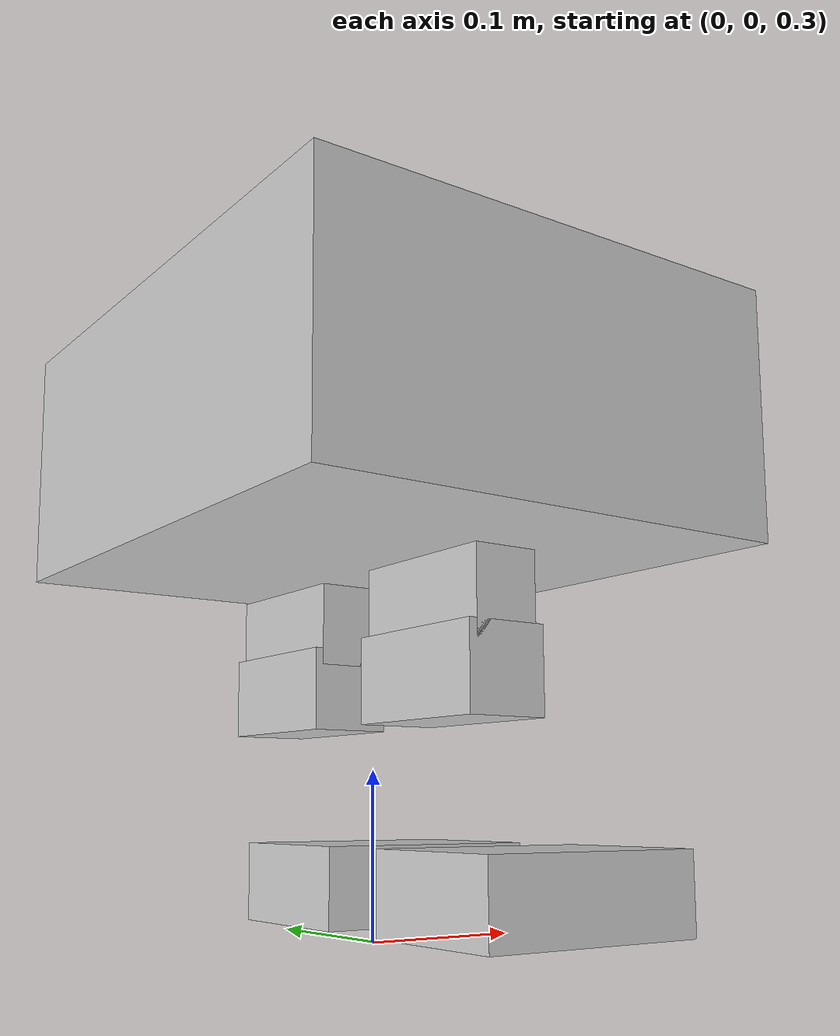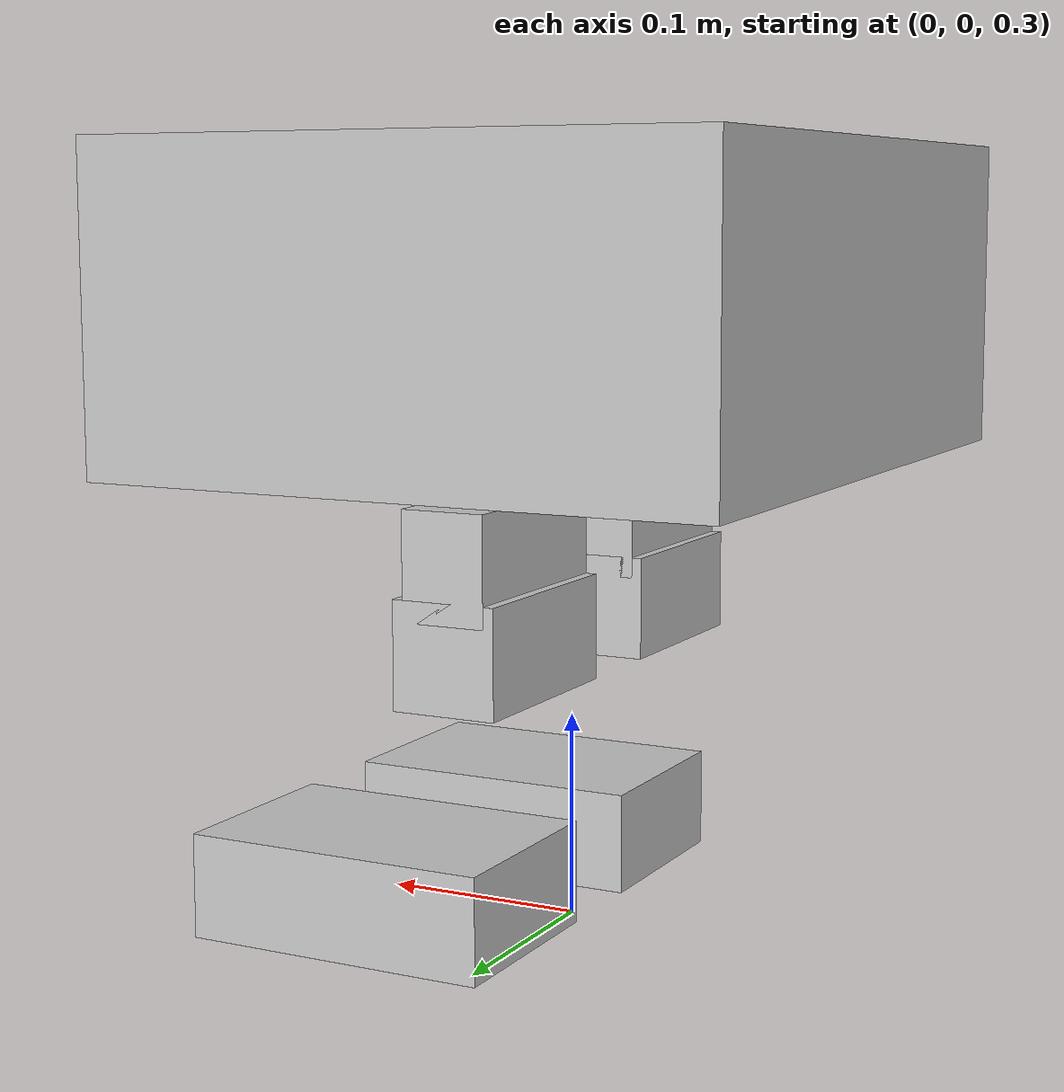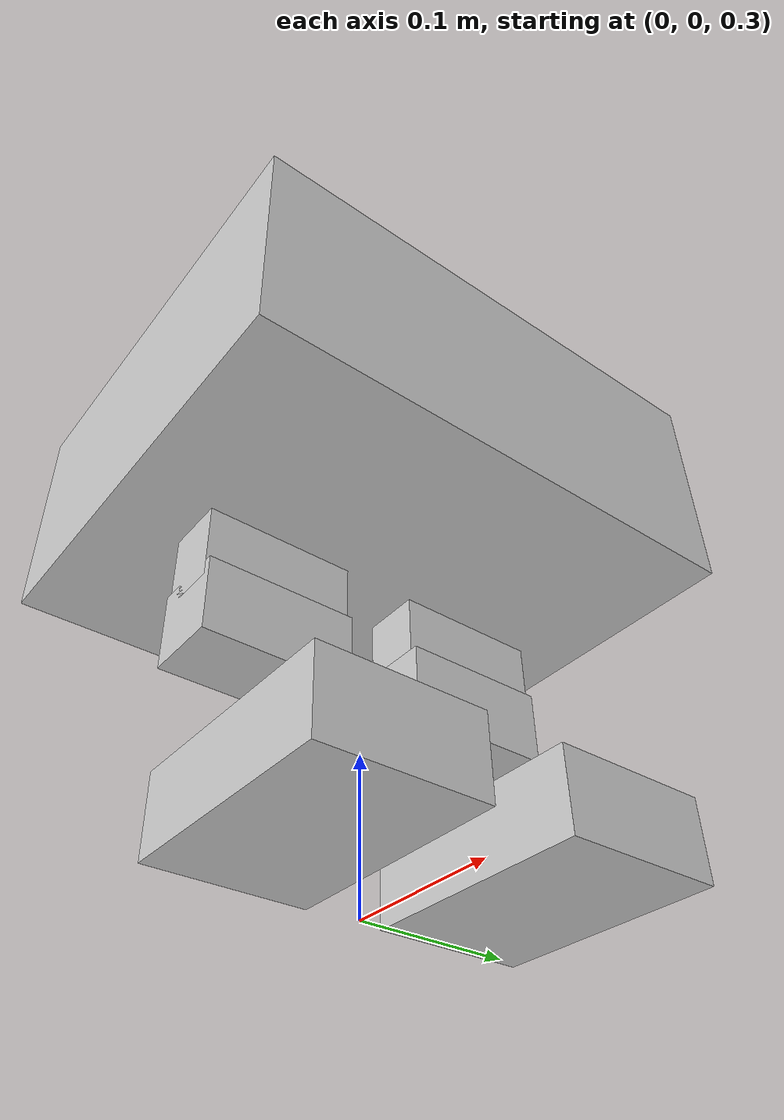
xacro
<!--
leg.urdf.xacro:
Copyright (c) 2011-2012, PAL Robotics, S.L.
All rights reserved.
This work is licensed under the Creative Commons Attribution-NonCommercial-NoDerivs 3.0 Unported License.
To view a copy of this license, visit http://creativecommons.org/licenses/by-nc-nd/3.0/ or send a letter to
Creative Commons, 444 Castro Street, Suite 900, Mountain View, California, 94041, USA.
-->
<robot name="lobot"
    xmlns:xacro="http://ros.org/wiki/xacro">

    <xacro:include filename="$(find lobot_description)/urdf/materials.urdf.xacro" />
    <link name="world" />
    <joint name="world_joint" type="fixed">
        <parent link="world" />
        <child link="base_link" />
        <origin xyz="0  0 0.6" rpy="0 0 0" />
    </joint>
    <link name="base_link">
        <inertial>
            <mass value="5.3221"/>
            <origin xyz="-0.01209 -0.00442 0.02145" rpy="0 0 0"/>
            <inertia ixx="0.03408839175" ixy="0.00000898087" ixz="0.00238269732" iyy="0.03351929137" iyz="0.00049460232" izz="0.04506059363"/>
        </inertial>
        <visual>
            <origin rpy="0 0 0" xyz="0 0 0"/>
            <geometry>
                <box size="0.3 0.35 0.15"/>
            </geometry>
            <material name="LightGrey" />
        </visual>
        <collision>
            <origin xyz="-0.022 0 0.01" rpy="0 0 0" />
            <geometry>
                <box size="0.01 0.01 0.01"/>
            </geometry>
        </collision>
    </link>
    <xacro:include filename="$(find lobot_description)/urdf/leg/leg.urdf.xacro" />

    <xacro:lobot_leg name="leg" side="right" reflect="1.0" parent="base_link"/>
    <xacro:lobot_leg name="leg" side="left" reflect="-1.0" parent="base_link"/>

</robot>

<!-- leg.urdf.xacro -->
<robot name="lobot" xmlns:xacro="http://ros.org/wiki/xacro">

    <!--File includes-->
    <xacro:include filename="$(find lobot_description)/urdf/leg/leg.transmission.xacro" />

    <!--Constant parameters-->

    <xacro:property name="deg_to_rad" value="0.01745329251994329577" />

    <xacro:property name="leg_friction" value="1.0" />
    <xacro:property name="leg_damping" value="1.0" />
    <xacro:property name="leg_reduction" value="1.0" />
    <xacro:property name="leg_eps" value="0.0" />
    <xacro:property name="leg_version" value="0.0" />

    <xacro:property name="leg_1_joint_max_vel" value="4" />
    <xacro:property name="leg_2_joint_max_vel" value="${3.94 if leg_version=='v1' else 2.27}" />
    <xacro:property name="leg_3_joint_max_vel" value="${6.0  if leg_version=='v1' else 3.64}" />
    <xacro:property name="leg_4_joint_max_vel" value="${4.25 if leg_version=='v1' else 3.225}" />
    <xacro:property name="leg_5_joint_max_vel" value="${4.0  if leg_version=='v1' else 2.44}" />
    <xacro:property name="leg_6_joint_max_vel" value="${3.94 if leg_version=='v1' else 2.27}" />

    <xacro:property name="leg_1_joint_effort" value="${50.69 if leg_version=='v1' else 42.7}" />
    <xacro:property name="leg_2_joint_effort" value="${71.4  if leg_version=='v1' else 64.0}" />
    <xacro:property name="leg_3_joint_effort" value="${62.9  if leg_version=='v1' else 55.7}" />
    <xacro:property name="leg_4_joint_effort" value="${140.4 if leg_version=='v1' else 138.3}" />
    <xacro:property name="leg_5_joint_effort" value="${91.6  if leg_version=='v1' else 80.9}" />
    <xacro:property name="leg_6_joint_effort" value="${71.48 if leg_version=='v1' else 64.0}" />

    <xacro:macro name="lobot_leg" params="name parent side reflect">

        <link name="leg_${side}_1_link">
            <inertial>
                <mass value="1.02901" />
                <origin xyz="-0.02571 0 0.02557" rpy="0 0 0" />
                <inertia ixx="0.00132187534" ixy="0.00000001514" ixz="0.00040022268" iyy="0.0018528617" iyz="0.00000050713" izz="0.00084231334" />
            </inertial>
            <visual>
                <origin xyz="0 0 -0.03" rpy="0 0 0" />
                <geometry>
                    <box size="0.04 0.10 0.05" />
                </geometry>
                <material name="LightGrey" />
            </visual>
            <collision>
                <origin xyz="0 0 0" rpy="0 0 0" />
                <geometry>
                    <box size="0.04 0.10 0.05" />
                </geometry>
            </collision>
        </link>

        <joint name="leg_${side}_1_joint" type="revolute">
            <origin xyz="0  ${-reflect*0.075} -0.08" rpy="0 0 0" />
            <axis xyz="1 0 0" />
            <parent link="${parent}" />
            <child link="leg_${side}_1_link" />
            <limit lower="-1.57" upper="1.57" effort="50" velocity="4" />
        </joint>

        <link name="leg_${side}_2_link">
            <inertial>
                <mass value="0.69621" />
                <origin xyz="0.00057	${-reflect*0.00881}	-0.01125" rpy="0.0 0.0 0.0" />
                <inertia ixx="0.0008416476" ixy="-0.00000268743" ixz="0.00000667199" iyy="0.00039794844" iyz="0.00002668971" izz="0.00084196694" />
            </inertial>
            <visual>
                <origin rpy="0 0 0" xyz="0 0 0" />
                <geometry>
                    <box size="0.05 0.10 0.05" />
                </geometry>
                <material name="LightGrey" />
            </visual>
        </link>

        <joint name="leg_${side}_2_joint" type="revolute">
            <origin xyz="0 0 -0.07" rpy="0 0 0" />
            <axis xyz="0 1 0" />
            <parent link="leg_${side}_1_link" />
            <child link="leg_${side}_2_link" />
            <limit lower="${-22.5*deg_to_rad - reflect*7.5*deg_to_rad}" upper="${22.5*deg_to_rad - reflect*7.5*deg_to_rad}" effort="${leg_2_joint_effort}" velocity="${leg_2_joint_max_vel}" />
        </joint>

        <link name="leg_${side}_3_link">
            <inertial>
              <mass value="3.97852"/>
              <origin xyz="0.14784 -0.01646 ${-reflect*0.01793}" rpy="0.0 0 0.0"/>
              <inertia ixx="0.00507885174" ixy="-0.00034076421" ixz="-0.00225952731" iyy="0.02850097402" iyz="0.00003047874" izz="0.02632392239"/>
            </inertial>
           <visual>
              <origin rpy="0 0 0" xyz="0 0 0"/>
              <geometry>
                <box size="0.15 0.10 0.05" />
              </geometry>
              <material name="LightGrey" />
            </visual>
            <collision>
              <origin rpy="0 0 0" xyz="0.15 0 ${-reflect*0.015}"/>
              <geometry>
                <box size="0.15 0.10 0.20"/>
              </geometry>
            </collision>
          </link>

          <joint name="leg_${side}_3_joint" type="revolute">
            <origin xyz="0.06 0 -0.12" rpy="0 0 0" />
            <axis xyz="0 1 0"/>
            <parent link="leg_${side}_2_link"/>
            <child link="leg_${side}_3_link"/>
            <dynamics friction="${leg_friction}" damping="${leg_damping}"/>
            <limit lower="${ -100.0 * deg_to_rad}" upper="${45 * deg_to_rad}" effort="${leg_3_joint_effort}" velocity="${leg_3_joint_max_vel}" />

            <safety_controller k_position="100"
                               k_velocity="100"
                               soft_lower_limit="${-100.0 * deg_to_rad + leg_eps}"
                               soft_upper_limit="${  45.0 * deg_to_rad - leg_eps}" />
          </joint>

        <gazebo reference="leg_${side}_1_link">
            <mu1>0.9</mu1>
            <mu2>0.9</mu2>
        </gazebo>

        <gazebo reference="leg_${side}_1_joint">
            <implicitSpringDamper>1</implicitSpringDamper>
        </gazebo>
        <gazebo reference="leg_${side}_2_joint">
            <implicitSpringDamper>1</implicitSpringDamper>
        </gazebo>
        <gazebo reference="leg_${side}_3_joint">
            <implicitSpringDamper>1</implicitSpringDamper>
        </gazebo>

        <xacro:lobot_leg_transmission name="${name}" side="${side}" number="1" reduction="${leg_reduction}" />
        <xacro:lobot_leg_transmission name="${name}" side="${side}" number="2" reduction="${leg_reduction}" />
        <xacro:lobot_leg_transmission name="${name}" side="${side}" number="3" reduction="${leg_reduction}" />
    </xacro:macro>
</robot>
